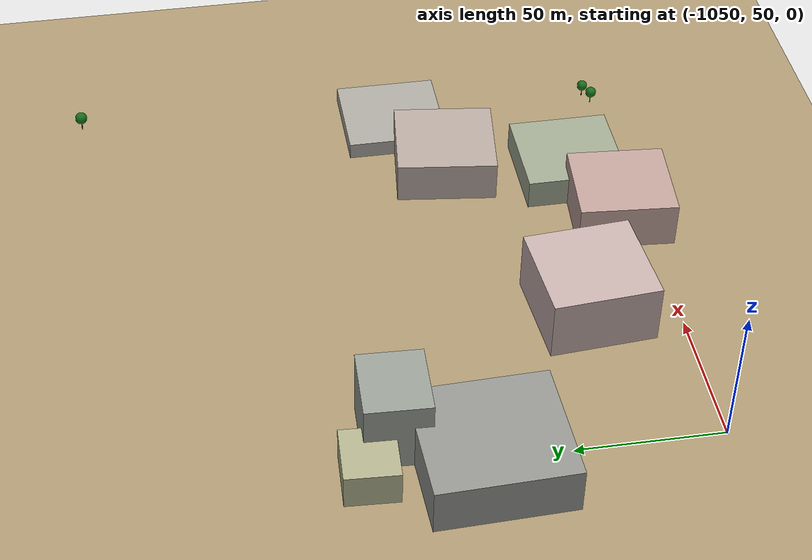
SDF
<sdf version="1.9">
 <world name="crossroad_world">
  <model name="ground_plane">
   <static>true</static>
   <pose>0 0 -0.05 0 0 0</pose>
   <link name="link">
    <collision name="collision">
     <geometry><plane><normal>0 0 1</normal><size>10000 10000</size></plane></geometry>
    </collision>
    <visual name="visual">
     <geometry><plane><normal>0 0 1</normal><size>15000 15000</size></plane></geometry>
     <material><ambient>0.68 0.60 0.45 1</ambient><diffuse>0.68 0.60 0.45 1</diffuse></material>
    </visual>
   </link>
  </model>
  <model name="tree_284">
   <static>true</static>
   <pose>-863.976 245.348 0 0 0 0</pose>
   <link name="link">
    <visual name="trunk">
     <pose>0 0 1.861 0 0 0</pose>
     <geometry><cylinder><radius>0.163</radius><length>3.722</length></cylinder></geometry>
     <material><ambient>0.38 0.22 0.08 1</ambient><diffuse>0.38 0.22 0.08 1</diffuse></material>
    </visual>
    <visual name="canopy">
     <pose>0 0 5.159 0 0 0</pose>
     <geometry><sphere><radius>2.210</radius></sphere></geometry>
     <material><ambient>0.08 0.44 0.10 1</ambient><diffuse>0.08 0.44 0.10 1</diffuse></material>
    </visual>
    <collision name="col">
     <pose>0 0 1.861 0 0 0</pose>
     <geometry><cylinder><radius>0.163</radius><length>3.722</length></cylinder></geometry>
    </collision>
   </link>
  </model>
  <model name="tree_351">
   <static>true</static>
   <pose>-877.179 52.498 0 0 0 0</pose>
   <link name="link">
    <visual name="trunk">
     <pose>0 0 1.667 0 0 0</pose>
     <geometry><cylinder><radius>0.146</radius><length>3.333</length></cylinder></geometry>
     <material><ambient>0.38 0.22 0.08 1</ambient><diffuse>0.38 0.22 0.08 1</diffuse></material>
    </visual>
    <visual name="canopy">
     <pose>0 0 4.619 0 0 0</pose>
     <geometry><sphere><radius>1.979</radius></sphere></geometry>
     <material><ambient>0.08 0.44 0.10 1</ambient><diffuse>0.08 0.44 0.10 1</diffuse></material>
    </visual>
    <collision name="col">
     <pose>0 0 1.667 0 0 0</pose>
     <geometry><cylinder><radius>0.146</radius><length>3.333</length></cylinder></geometry>
    </collision>
   </link>
  </model>
  <model name="tree_355">
   <static>true</static>
   <pose>-872.462 54.722 0 0 0 0</pose>
   <link name="link">
    <visual name="trunk">
     <pose>0 0 1.621 0 0 0</pose>
     <geometry><cylinder><radius>0.142</radius><length>3.242</length></cylinder></geometry>
     <material><ambient>0.38 0.22 0.08 1</ambient><diffuse>0.38 0.22 0.08 1</diffuse></material>
    </visual>
    <visual name="canopy">
     <pose>0 0 4.493 0 0 0</pose>
     <geometry><sphere><radius>1.925</radius></sphere></geometry>
     <material><ambient>0.08 0.44 0.10 1</ambient><diffuse>0.08 0.44 0.10 1</diffuse></material>
    </visual>
    <collision name="col">
     <pose>0 0 1.621 0 0 0</pose>
     <geometry><cylinder><radius>0.142</radius><length>3.242</length></cylinder></geometry>
    </collision>
   </link>
  </model>
  <model name="building_159">
   <static>true</static>
   <pose>-879.280 129.943 2.998 0 0 -0.000</pose>
   <link name="link">
    <visual name="body">
     <geometry><box><size>34.40 36.34 6.00</size></box></geometry>
     <material><ambient>0.67 0.66 0.63 1</ambient><diffuse>0.67 0.66 0.63 1</diffuse></material>
    </visual>
    <collision name="col"><geometry><box><size>34.40 36.34 6.00</size></box></geometry></collision>
   </link>
  </model>
  <model name="building_248">
   <static>true</static>
   <pose>-1035.156 154.710 12.695 0 0 -0.038</pose>
   <link name="link">
    <visual name="body">
     <geometry><box><size>25.19 21.91 25.39</size></box></geometry>
     <material><ambient>0.60 0.62 0.59 1</ambient><diffuse>0.60 0.62 0.59 1</diffuse></material>
    </visual>
    <collision name="col"><geometry><box><size>25.19 21.91 25.39</size></box></geometry></collision>
   </link>
  </model>
  <model name="building_249">
   <static>true</static>
   <pose>-1051.503 164.878 6.246 0 0 -0.052</pose>
   <link name="link">
    <visual name="body">
     <geometry><box><size>20.27 18.03 12.49</size></box></geometry>
     <material><ambient>0.70 0.70 0.56 1</ambient><diffuse>0.70 0.70 0.56 1</diffuse></material>
    </visual>
    <collision name="col"><geometry><box><size>20.27 18.03 12.49</size></box></geometry></collision>
   </link>
  </model>
  <model name="building_250">
   <static>true</static>
   <pose>-1052.539 126.709 8.463 0 0 0.034</pose>
   <link name="link">
    <visual name="body">
     <geometry><box><size>43.35 46.59 16.93</size></box></geometry>
     <material><ambient>0.58 0.58 0.57 1</ambient><diffuse>0.58 0.58 0.57 1</diffuse></material>
    </visual>
    <collision name="col"><geometry><box><size>43.35 46.59 16.93</size></box></geometry></collision>
   </link>
  </model>
  <model name="building_411">
   <static>true</static>
   <pose>-943.157 58.185 8.294 0 0 -0.075</pose>
   <link name="link">
    <visual name="body">
     <geometry><box><size>32.29 34.27 16.59</size></box></geometry>
     <material><ambient>0.76 0.64 0.61 1</ambient><diffuse>0.76 0.64 0.61 1</diffuse></material>
    </visual>
    <collision name="col"><geometry><box><size>32.29 34.27 16.59</size></box></geometry></collision>
   </link>
  </model>
  <model name="building_413">
   <static>true</static>
   <pose>-988.944 80.589 10.849 0 0 0.078</pose>
   <link name="link">
    <visual name="body">
     <geometry><box><size>35.69 37.13 21.70</size></box></geometry>
     <material><ambient>0.78 0.69 0.68 1</ambient><diffuse>0.78 0.69 0.68 1</diffuse></material>
    </visual>
    <collision name="col"><geometry><box><size>35.69 37.13 21.70</size></box></geometry></collision>
   </link>
  </model>
  <model name="building_415">
   <static>true</static>
   <pose>-916.334 71.129 5.385 0 0 0.003</pose>
   <link name="link">
    <visual name="body">
     <geometry><box><size>34.61 35.94 10.77</size></box></geometry>
     <material><ambient>0.63 0.66 0.57 1</ambient><diffuse>0.63 0.66 0.57 1</diffuse></material>
    </visual>
    <collision name="col"><geometry><box><size>34.61 35.94 10.77</size></box></geometry></collision>
   </link>
  </model>
  <model name="building_543">
   <static>true</static>
   <pose>-908.105 115.057 7.454 0 0 -0.121</pose>
   <link name="link">
    <visual name="body">
     <geometry><box><size>33.43 35.55 14.91</size></box></geometry>
     <material><ambient>0.72 0.66 0.63 1</ambient><diffuse>0.72 0.66 0.63 1</diffuse></material>
    </visual>
    <collision name="col"><geometry><box><size>33.43 35.55 14.91</size></box></geometry></collision>
   </link>
  </model>
 </world>
</sdf>
